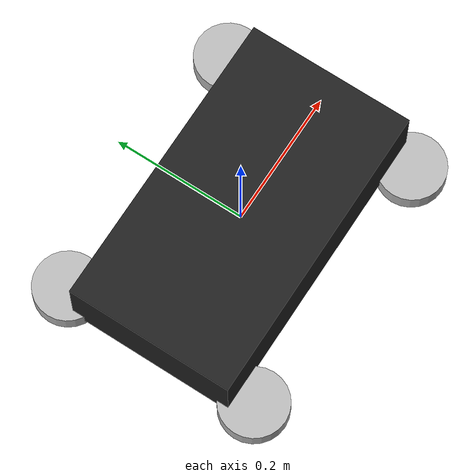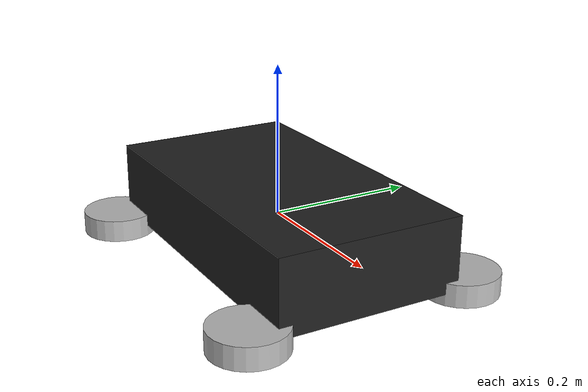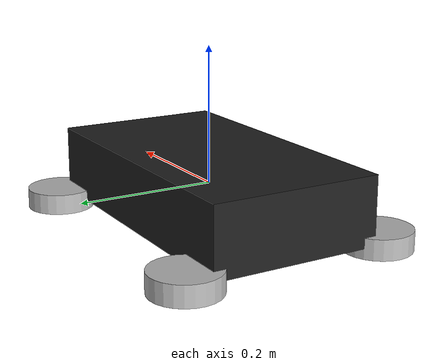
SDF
<sdf version='1.11'>
  <model name='rc_car'>
    <link name='base_link'>
      <inertial>
        <pose>0 0 0 0 0 0</pose>
        <mass>1</mass>
        <inertia>
          <ixx>0.01</ixx>
          <ixy>0</ixy>
          <ixz>0</ixz>
          <iyy>0.01</iyy>
          <iyz>0</iyz>
          <izz>0.01</izz>
        </inertia>
      </inertial>
      <visual name='base_link_visual'>
        <pose>0 0 0 0 0 0</pose>
        <geometry>
          <box>
            <size>0.45000000000000001 0.25 0.10000000000000001</size>
          </box>
        </geometry>
        <material>
          <diffuse>0.125 0.125 0.125 1</diffuse>
          <ambient>0.125 0.125 0.125 1</ambient>
        </material>
      </visual>
    </link>
    <joint name='front_left_wheel_joint' type='revolute'>
      <pose relative_to='base_link'>0.20000000000000001 0.14999999999999999 -0.050000000000000003 0 0 0</pose>
      <parent>base_link</parent>
      <child>front_left_wheel</child>
      <axis>
        <xyz>0 1 0</xyz>
        <limit>
          <lower>-inf</lower>
          <upper>inf</upper>
        </limit>
        <dynamics>
          <spring_reference>0</spring_reference>
          <spring_stiffness>0</spring_stiffness>
        </dynamics>
      </axis>
    </joint>
    <link name='front_left_wheel'>
      <pose relative_to='front_left_wheel_joint'>0 0 0 0 0 0</pose>
      <inertial>
        <pose>0 0 0 0 0 0</pose>
        <mass>0.10000000000000001</mass>
        <inertia>
          <ixx>0.001</ixx>
          <ixy>0</ixy>
          <ixz>0</ixz>
          <iyy>0.001</iyy>
          <iyz>0</iyz>
          <izz>0.001</izz>
        </inertia>
      </inertial>
      <visual name='front_left_wheel_visual'>
        <pose>0 0 0 0 0 0</pose>
        <geometry>
          <cylinder>
            <length>0.029999999999999999</length>
            <radius>0.050000000000000003</radius>
          </cylinder>
        </geometry>
      </visual>
    </link>
    <joint name='front_right_wheel_joint' type='revolute'>
      <pose relative_to='base_link'>0.20000000000000001 -0.14999999999999999 -0.050000000000000003 0 0 0</pose>
      <parent>base_link</parent>
      <child>front_right_wheel</child>
      <axis>
        <xyz>0 1 0</xyz>
        <limit>
          <lower>-inf</lower>
          <upper>inf</upper>
        </limit>
        <dynamics>
          <spring_reference>0</spring_reference>
          <spring_stiffness>0</spring_stiffness>
        </dynamics>
      </axis>
    </joint>
    <link name='front_right_wheel'>
      <pose relative_to='front_right_wheel_joint'>0 0 0 0 0 0</pose>
      <inertial>
        <pose>0 0 0 0 0 0</pose>
        <mass>0.10000000000000001</mass>
        <inertia>
          <ixx>0.001</ixx>
          <ixy>0</ixy>
          <ixz>0</ixz>
          <iyy>0.001</iyy>
          <iyz>0</iyz>
          <izz>0.001</izz>
        </inertia>
      </inertial>
      <visual name='front_right_wheel_visual'>
        <pose>0 0 0 0 0 0</pose>
        <geometry>
          <cylinder>
            <length>0.029999999999999999</length>
            <radius>0.050000000000000003</radius>
          </cylinder>
        </geometry>
      </visual>
    </link>
    <joint name='rear_left_wheel_joint' type='revolute'>
      <pose relative_to='base_link'>-0.20000000000000001 0.14999999999999999 -0.050000000000000003 0 0 0</pose>
      <parent>base_link</parent>
      <child>rear_left_wheel</child>
      <axis>
        <xyz>0 1 0</xyz>
        <limit>
          <lower>-inf</lower>
          <upper>inf</upper>
        </limit>
        <dynamics>
          <spring_reference>0</spring_reference>
          <spring_stiffness>0</spring_stiffness>
        </dynamics>
      </axis>
    </joint>
    <link name='rear_left_wheel'>
      <pose relative_to='rear_left_wheel_joint'>0 0 0 0 0 0</pose>
      <inertial>
        <pose>0 0 0 0 0 0</pose>
        <mass>0.10000000000000001</mass>
        <inertia>
          <ixx>0.001</ixx>
          <ixy>0</ixy>
          <ixz>0</ixz>
          <iyy>0.001</iyy>
          <iyz>0</iyz>
          <izz>0.001</izz>
        </inertia>
      </inertial>
      <visual name='rear_left_wheel_visual'>
        <pose>0 0 0 0 0 0</pose>
        <geometry>
          <cylinder>
            <length>0.029999999999999999</length>
            <radius>0.050000000000000003</radius>
          </cylinder>
        </geometry>
      </visual>
    </link>
    <joint name='rear_right_wheel_joint' type='revolute'>
      <pose relative_to='base_link'>-0.20000000000000001 -0.14999999999999999 -0.050000000000000003 0 0 0</pose>
      <parent>base_link</parent>
      <child>rear_right_wheel</child>
      <axis>
        <xyz>0 1 0</xyz>
        <limit>
          <lower>-inf</lower>
          <upper>inf</upper>
        </limit>
        <dynamics>
          <spring_reference>0</spring_reference>
          <spring_stiffness>0</spring_stiffness>
        </dynamics>
      </axis>
    </joint>
    <link name='rear_right_wheel'>
      <pose relative_to='rear_right_wheel_joint'>0 0 0 0 0 0</pose>
      <inertial>
        <pose>0 0 0 0 0 0</pose>
        <mass>0.10000000000000001</mass>
        <inertia>
          <ixx>0.001</ixx>
          <ixy>0</ixy>
          <ixz>0</ixz>
          <iyy>0.001</iyy>
          <iyz>0</iyz>
          <izz>0.001</izz>
        </inertia>
      </inertial>
      <visual name='rear_right_wheel_visual'>
        <pose>0 0 0 0 0 0</pose>
        <geometry>
          <cylinder>
            <length>0.029999999999999999</length>
            <radius>0.050000000000000003</radius>
          </cylinder>
        </geometry>
      </visual>
    </link>
  </model>
</sdf>
